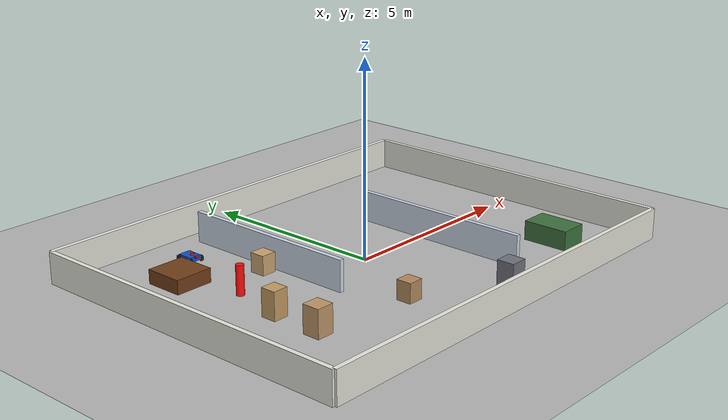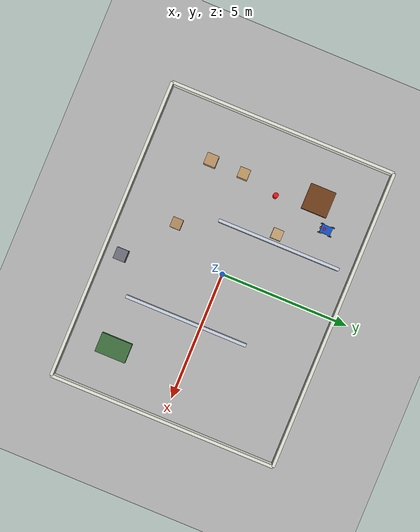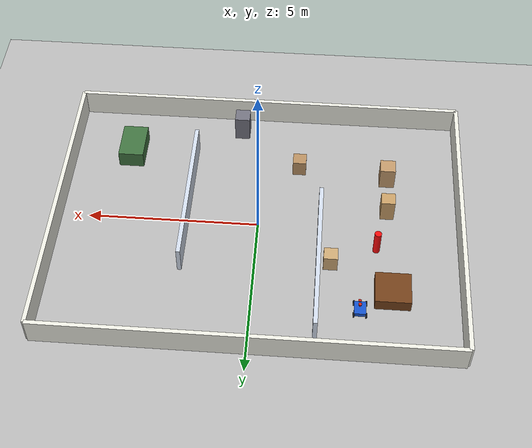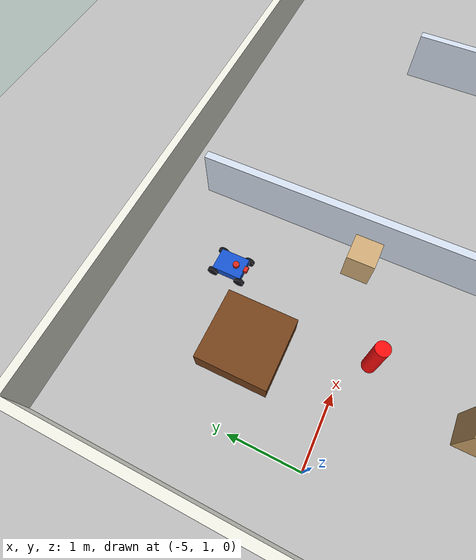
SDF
<?xml version="1.0"?>
<sdf version="1.9">
  <world name="three_room_house">
    <physics name="default_physics" type="ignored">
      <max_step_size>0.001</max_step_size>
      <real_time_factor>1.0</real_time_factor>
    </physics>
    <plugin filename="gz-sim-physics-system" name="gz::sim::systems::Physics"/>
    <plugin filename="gz-sim-user-commands-system" name="gz::sim::systems::UserCommands"/>
    <plugin filename="gz-sim-scene-broadcaster-system" name="gz::sim::systems::SceneBroadcaster"/>
    <plugin filename="gz-sim-sensors-system" name="gz::sim::systems::Sensors">
      <render_engine>ogre2</render_engine>
    </plugin>
    <plugin filename="gz-sim-imu-system" name="gz::sim::systems::Imu"/>
    <scene>
      <ambient>0.7 0.7 0.7 1</ambient>
      <background>0.85 0.90 0.95 1</background>
      <shadows>true</shadows>
    </scene>
    <light name="sun" type="directional">
      <cast_shadows>true</cast_shadows>
      <pose>0 0 12 0 0 0</pose>
      <diffuse>0.9 0.9 0.9 1</diffuse>
      <specular>0.2 0.2 0.2 1</specular>
      <direction>-0.5 0.3 -1</direction>
    </light>
    <model name="ground">
      <static>true</static>
      <link name="ground_link">
        <collision name="collision"><geometry><plane><normal>0 0 1</normal><size>40 40</size></plane></geometry></collision>
        <visual name="visual">
          <geometry><plane><normal>0 0 1</normal><size>40 40</size></plane></geometry>
          <material><diffuse>0.72 0.72 0.72 1</diffuse></material>
        </visual>
      </link>
    </model>
    <model name="three_room_house">
      <static>true</static>
      <link name="walls">
        <collision name="north"><pose>0 4.425 0.4 0 0 0</pose><geometry><box><size>11.7 0.12 0.8</size></box></geometry></collision>
        <visual name="north_visual"><pose>0 4.425 0.4 0 0 0</pose><geometry><box><size>11.7 0.12 0.8</size></box></geometry><material><diffuse>0.92 0.92 0.88 1</diffuse></material></visual>
        <collision name="south"><pose>0 -4.425 0.4 0 0 0</pose><geometry><box><size>11.7 0.12 0.8</size></box></geometry></collision>
        <visual name="south_visual"><pose>0 -4.425 0.4 0 0 0</pose><geometry><box><size>11.7 0.12 0.8</size></box></geometry><material><diffuse>0.92 0.92 0.88 1</diffuse></material></visual>
        <collision name="west"><pose>-5.85 0 0.4 0 0 0</pose><geometry><box><size>0.12 8.85 0.8</size></box></geometry></collision>
        <visual name="west_visual"><pose>-5.85 0 0.4 0 0 0</pose><geometry><box><size>0.12 8.85 0.8</size></box></geometry><material><diffuse>0.92 0.92 0.88 1</diffuse></material></visual>
        <collision name="east"><pose>5.85 0 0.4 0 0 0</pose><geometry><box><size>0.12 8.85 0.8</size></box></geometry></collision>
        <visual name="east_visual"><pose>5.85 0 0.4 0 0 0</pose><geometry><box><size>0.12 8.85 0.8</size></box></geometry><material><diffuse>0.92 0.92 0.88 1</diffuse></material></visual>
        <collision name="divider_left"><pose>-1.8 1.5 0.4 0 0 0</pose><geometry><box><size>0.12 4.8 0.8</size></box></geometry></collision>
        <visual name="divider_left_visual"><pose>-1.8 1.5 0.4 0 0 0</pose><geometry><box><size>0.12 4.8 0.8</size></box></geometry><material><diffuse>0.82 0.86 0.92 1</diffuse></material></visual>
        <collision name="divider_right"><pose>2.1 -0.6 0.4 0 0 0</pose><geometry><box><size>0.12 4.8 0.8</size></box></geometry></collision>
        <visual name="divider_right_visual"><pose>2.1 -0.6 0.4 0 0 0</pose><geometry><box><size>0.12 4.8 0.8</size></box></geometry><material><diffuse>0.82 0.86 0.92 1</diffuse></material></visual>
        <collision name="table"><pose>-3.9 2.25 0.18 0 0 0</pose><geometry><box><size>1.0 1.0 0.36</size></box></geometry></collision>
        <visual name="table_visual"><pose>-3.9 2.25 0.18 0 0 0</pose><geometry><box><size>1.0 1.0 0.36</size></box></geometry><material><diffuse>0.45 0.25 0.10 1</diffuse></material></visual>
        <collision name="cabinet"><pose>4.05 -2.7 0.25 0 0 0</pose><geometry><box><size>0.75 1.2 0.5</size></box></geometry></collision>
        <visual name="cabinet_visual"><pose>4.05 -2.7 0.25 0 0 0</pose><geometry><box><size>0.75 1.2 0.5</size></box></geometry><material><diffuse>0.25 0.45 0.25 1</diffuse></material></visual>
        <collision name="pillar"><pose>0.75 -3.75 0.4 0 0 0</pose><geometry><box><size>0.45 0.45 0.8</size></box></geometry></collision>
        <visual name="pillar_visual"><pose>0.75 -3.75 0.4 0 0 0</pose><geometry><box><size>0.45 0.45 0.8</size></box></geometry><material><diffuse>0.45 0.45 0.50 1</diffuse></material></visual>
        <collision name="crate_center"><pose>-3.75 -2.0 0.35 0 0 0</pose><geometry><box><size>0.45 0.45 0.7</size></box></geometry></collision>
        <visual name="crate_center_visual"><pose>-3.75 -2.0 0.35 0 0 0</pose><geometry><box><size>0.45 0.45 0.7</size></box></geometry><material><diffuse>0.76 0.60 0.42 1</diffuse></material></visual>
        <collision name="crate_north"><pose>-3.75 -0.7 0.35 0 0 0</pose><geometry><box><size>0.4 0.4 0.7</size></box></geometry></collision>
        <visual name="crate_north_visual"><pose>-3.75 -0.7 0.35 0 0 0</pose><geometry><box><size>0.4 0.4 0.7</size></box></geometry><material><diffuse>0.78 0.62 0.40 1</diffuse></material></visual>
        <collision name="crate_east"><pose>-2.15 1.3 0.25 0 0 0</pose><geometry><box><size>0.4 0.4 0.5</size></box></geometry></collision>
        <visual name="crate_east_visual"><pose>-2.15 1.3 0.25 0 0 0</pose><geometry><box><size>0.4 0.4 0.5</size></box></geometry><material><diffuse>0.80 0.66 0.46 1</diffuse></material></visual>
        <collision name="crate_hall"><pose>-1.1 -2.3 0.25 0 0 0</pose><geometry><box><size>0.4 0.4 0.5</size></box></geometry></collision>
        <visual name="crate_hall_visual"><pose>-1.1 -2.3 0.25 0 0 0</pose><geometry><box><size>0.4 0.4 0.5</size></box></geometry><material><diffuse>0.72 0.56 0.38 1</diffuse></material></visual>
      </link>
    </model>

    <!-- 跟随演示：小车在北侧旁观，红柱在南侧空地绕圈起点（1.5x 放大布局）。 -->
    <include>
      <uri>model://mecamind_mecanum</uri>
      <name>mecamind_mecanum</name>
      <pose>-3.0 2.925 0.10 0 0 -1.5708</pose>
    </include>
    <include>
      <uri>model://follow_target</uri>
      <name>follow_target</name>
      <pose>-3.45 0.7 0.38 0 0 0</pose>
    </include>
  </world>
</sdf>

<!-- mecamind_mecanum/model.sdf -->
<sdf version="1.9">
  <model name="mecamind_mecanum">
    <!-- 与轻量仿真一致，出生在地图原点，便于共用建图路线 -->
    <pose>0 0 0.10 0 0 0</pose>
    <self_collide>false</self_collide>

    <!-- 底盘：0.42 x 0.32 x 0.12 m 的盒子，质量 8kg。
         inertial 的惯量矩阵影响旋转动力学，值按均匀盒子近似估算。 -->
    <link name="base_link">
      <inertial>
        <mass>8.0</mass>
        <inertia>
          <ixx>0.08</ixx><iyy>0.12</iyy><izz>0.16</izz>
          <ixy>0</ixy><ixz>0</ixz><iyz>0</iyz>
        </inertia>
      </inertial>
      <collision name="base_collision">
        <pose>0 0 0.10 0 0 0</pose>
        <geometry><box><size>0.42 0.32 0.12</size></box></geometry>
      </collision>
      <visual name="base_visual">
        <pose>0 0 0.10 0 0 0</pose>
        <geometry><box><size>0.42 0.32 0.12</size></box></geometry>
        <material><diffuse>0.08 0.32 0.80 1</diffuse><ambient>0.05 0.20 0.50 1</ambient></material>
      </visual>
    </link>

    <link name="front_left_wheel">
      <pose>0.20 0.17 0.075 0 0 0</pose>
      <inertial><mass>0.35</mass><inertia><ixx>0.001</ixx><iyy>0.001</iyy><izz>0.001</izz></inertia></inertial>
      <visual name="visual">
        <!-- 圆柱默认轴向朝 z，绕 x 转 90°（1.5708 rad）让轮子立起来 -->
        <pose>0 0 0 1.5708 0 0</pose>
        <geometry><cylinder><radius>0.075</radius><length>0.045</length></cylinder></geometry>
        <material><diffuse>0.08 0.08 0.10 1</diffuse></material>
      </visual>
      <collision name="collision">
        <geometry><sphere><radius>0.075</radius></sphere></geometry>
        <surface><friction><ode><mu>1.0</mu><mu2>0.0</mu2><fdir1 gz:expressed_in="base_link">1 -1 0</fdir1></ode></friction></surface>
      </collision>
    </link>

    <link name="front_right_wheel">
      <pose>0.20 -0.17 0.075 0 0 0</pose>
      <inertial><mass>0.35</mass><inertia><ixx>0.001</ixx><iyy>0.001</iyy><izz>0.001</izz></inertia></inertial>
      <visual name="visual">
        <pose>0 0 0 1.5708 0 0</pose>
        <geometry><cylinder><radius>0.075</radius><length>0.045</length></cylinder></geometry>
        <material><diffuse>0.08 0.08 0.10 1</diffuse></material>
      </visual>
      <collision name="collision">
        <geometry><sphere><radius>0.075</radius></sphere></geometry>
        <surface><friction><ode><mu>1.0</mu><mu2>0.0</mu2><fdir1 gz:expressed_in="base_link">1 1 0</fdir1></ode></friction></surface>
      </collision>
    </link>

    <link name="rear_left_wheel">
      <pose>-0.20 0.17 0.075 0 0 0</pose>
      <inertial><mass>0.35</mass><inertia><ixx>0.001</ixx><iyy>0.001</iyy><izz>0.001</izz></inertia></inertial>
      <visual name="visual">
        <pose>0 0 0 1.5708 0 0</pose>
        <geometry><cylinder><radius>0.075</radius><length>0.045</length></cylinder></geometry>
        <material><diffuse>0.08 0.08 0.10 1</diffuse></material>
      </visual>
      <collision name="collision">
        <geometry><sphere><radius>0.075</radius></sphere></geometry>
        <surface><friction><ode><mu>1.0</mu><mu2>0.0</mu2><fdir1 gz:expressed_in="base_link">1 1 0</fdir1></ode></friction></surface>
      </collision>
    </link>

    <link name="rear_right_wheel">
      <pose>-0.20 -0.17 0.075 0 0 0</pose>
      <inertial><mass>0.35</mass><inertia><ixx>0.001</ixx><iyy>0.001</iyy><izz>0.001</izz></inertia></inertial>
      <visual name="visual">
        <pose>0 0 0 1.5708 0 0</pose>
        <geometry><cylinder><radius>0.075</radius><length>0.045</length></cylinder></geometry>
        <material><diffuse>0.08 0.08 0.10 1</diffuse></material>
      </visual>
      <collision name="collision">
        <geometry><sphere><radius>0.075</radius></sphere></geometry>
        <surface><friction><ode><mu>1.0</mu><mu2>0.0</mu2><fdir1 gz:expressed_in="base_link">1 -1 0</fdir1></ode></friction></surface>
      </collision>
    </link>

    <!-- 轮关节：revolute（旋转）关节，转轴沿 y（车身左右方向），
         即普通轮子的滚动轴。驱动插件通过这些关节给轮子施加转速。 -->
    <joint name="front_left_wheel_joint" type="revolute">
      <parent>base_link</parent><child>front_left_wheel</child>
      <axis><xyz>0 1 0</xyz></axis>
    </joint>
    <joint name="front_right_wheel_joint" type="revolute">
      <parent>base_link</parent><child>front_right_wheel</child>
      <axis><xyz>0 1 0</xyz></axis>
    </joint>
    <joint name="rear_left_wheel_joint" type="revolute">
      <parent>base_link</parent><child>rear_left_wheel</child>
      <axis><xyz>0 1 0</xyz></axis>
    </joint>
    <joint name="rear_right_wheel_joint" type="revolute">
      <parent>base_link</parent><child>rear_right_wheel</child>
      <axis><xyz>0 1 0</xyz></axis>
    </joint>

    <!-- 2D 激光雷达：360 束、覆盖 ±180°、量程 0.12~8m、10Hz。
         gz_frame_id 必须与 URDF 中的 TF frame 名一致（lidar_link），
         否则 SLAM 无法把激光点换算到底盘坐标系。
         noise 给测距加 0.005m 高斯噪声，模拟真实雷达。 -->
    <link name="lidar_link">
      <pose>0.08 0 0.19 0 0 0</pose>
      <visual name="visual">
        <geometry><cylinder><radius>0.045</radius><length>0.05</length></cylinder></geometry>
        <material><diffuse>0.85 0.15 0.10 1</diffuse></material>
      </visual>
      <sensor name="lidar" type="gpu_lidar">
        <topic>/scan</topic>
        <gz_frame_id>lidar_link</gz_frame_id>
        <update_rate>10</update_rate>
        <lidar>
          <scan>
            <horizontal><samples>360</samples><resolution>1</resolution><min_angle>-3.14159</min_angle><max_angle>3.14159</max_angle></horizontal>
          </scan>
          <range><min>0.12</min><max>8.0</max><resolution>0.01</resolution></range>
          <noise><type>gaussian</type><mean>0</mean><stddev>0.005</stddev></noise>
        </lidar>
        <always_on>true</always_on>
        <visualize>true</visualize>
      </sensor>
    </link>
    <!-- fixed 关节 = 刚性固连，雷达随底盘一起动，TF 是常量 -->
    <joint name="lidar_joint" type="fixed"><parent>base_link</parent><child>lidar_link</child></joint>

    <!-- IMU：50Hz 输出角速度/线加速度/姿态，可用于后续传感器融合课程 -->
    <link name="imu_link">
      <pose>0 0 0.15 0 0 0</pose>
      <sensor name="imu" type="imu">
        <topic>/imu</topic><gz_frame_id>imu_link</gz_frame_id>
        <update_rate>50</update_rate><always_on>true</always_on>
      </sensor>
    </link>
    <joint name="imu_joint" type="fixed"><parent>base_link</parent><child>imu_link</child></joint>

    <link name="camera_link">
      <pose>0.23 0 0.16 0 0 0</pose>
      <visual name="visual">
        <geometry><box><size>0.055 0.08 0.05</size></box></geometry>
        <material><diffuse>0.85 0.15 0.10 1</diffuse></material>
      </visual>
      <sensor name="camera" type="camera">
        <topic>/camera</topic>
        <gz_frame_id>camera_optical_frame</gz_frame_id>
        <update_rate>15</update_rate>
        <camera>
          <horizontal_fov>1.047</horizontal_fov>
          <image><width>640</width><height>480</height><format>R8G8B8</format></image>
          <clip><near>0.05</near><far>20</far></clip>
        </camera>
        <always_on>true</always_on>
      </sensor>
    </link>
    <joint name="camera_joint" type="fixed"><parent>base_link</parent><child>camera_link</child></joint>

    <!-- 关节状态发布插件：把四个轮关节的角度/角速度发到 /joint_states，
         经 bridge 桥到 ROS 后 RViz 可以显示轮子转动 -->
    <plugin filename="gz-sim-joint-state-publisher-system" name="gz::sim::systems::JointStatePublisher">
      <topic>/joint_states</topic>
      <joint_name>front_left_wheel_joint</joint_name>
      <joint_name>front_right_wheel_joint</joint_name>
      <joint_name>rear_left_wheel_joint</joint_name>
      <joint_name>rear_right_wheel_joint</joint_name>
    </plugin>

    <plugin filename="gz-sim-mecanum-drive-system" name="gz::sim::systems::MecanumDrive">
      <front_left_joint>front_left_wheel_joint</front_left_joint>
      <front_right_joint>front_right_wheel_joint</front_right_joint>
      <back_left_joint>rear_left_wheel_joint</back_left_joint>
      <back_right_joint>rear_right_wheel_joint</back_right_joint>
      <wheel_separation>0.34</wheel_separation>
      <wheelbase>0.40</wheelbase>
      <wheel_radius>0.075</wheel_radius>
      <topic>/cmd_vel</topic>
      <odom_topic>/odom</odom_topic>
      <tf_topic>/gz/tf</tf_topic>
      <frame_id>odom</frame_id>
      <child_frame_id>base_footprint</child_frame_id>
      <odom_publish_frequency>30</odom_publish_frequency>
      <min_acceleration>-1.5</min_acceleration>
      <max_acceleration>1.5</max_acceleration>
    </plugin>
  </model>
</sdf>

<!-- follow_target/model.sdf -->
<!--
  视觉跟随用的红色圆柱目标。

  【尺寸】半径 0.10m（直径 0.2m）：控制器用该直径 + 相机视场角把
  画面宽度反算成真实距离做距离闭环（target_real_width=0.20 必须
  与这里保持一致，改半径要同步改参数）。

  static=true：位姿由 follow_target_mover 通过 gz set_pose 驱动。
-->
<sdf version="1.9">
  <model name="follow_target">
    <static>true</static>
    <pose>0 0 0 0 0 0</pose>
    <link name="body">
      <visual name="visual">
        <geometry>
          <cylinder>
            <radius>0.10</radius>
            <length>0.75</length>
          </cylinder>
        </geometry>
        <material>
          <ambient>1.0 0.0 0.0 1</ambient>
          <diffuse>1.0 0.05 0.05 1</diffuse>
          <specular>0.05 0.05 0.05 1</specular>
          <emissive>0.85 0.0 0.0 1</emissive>
        </material>
      </visual>
      <collision name="collision">
        <geometry>
          <cylinder>
            <radius>0.10</radius>
            <length>0.75</length>
          </cylinder>
        </geometry>
      </collision>
    </link>
  </model>
</sdf>
